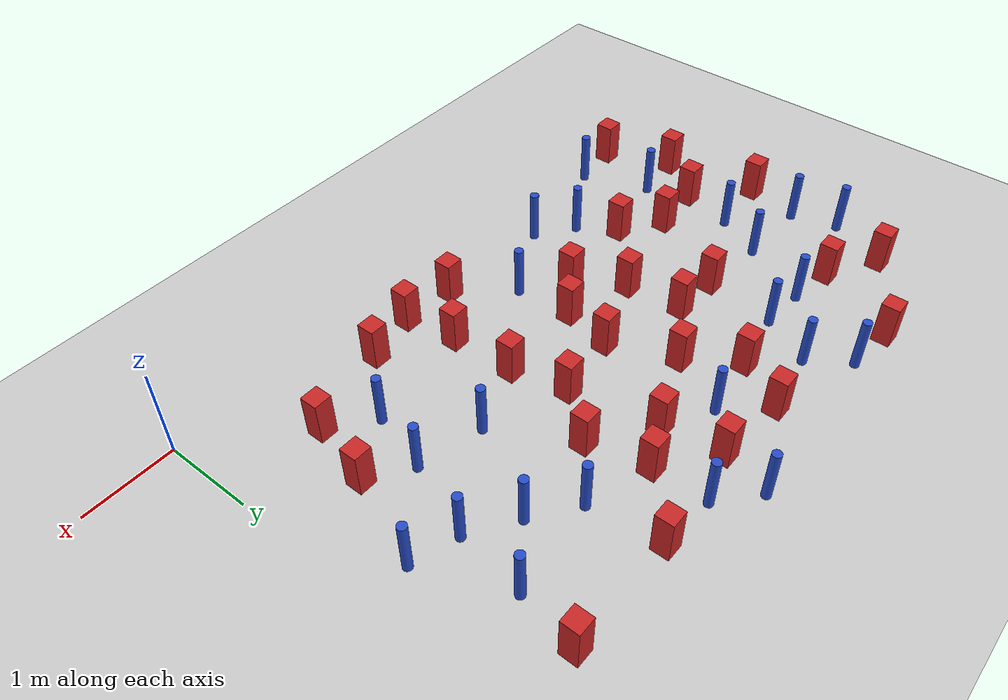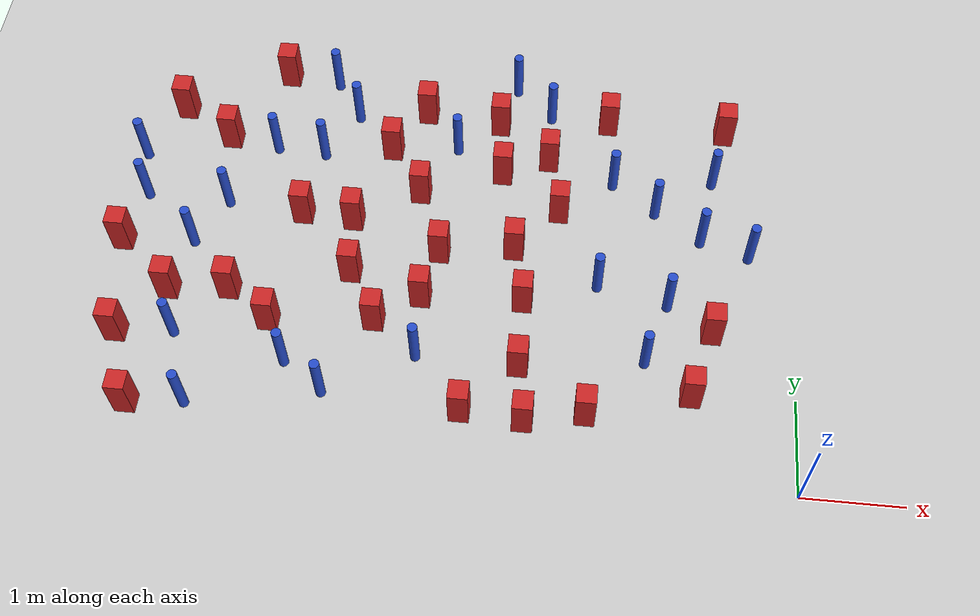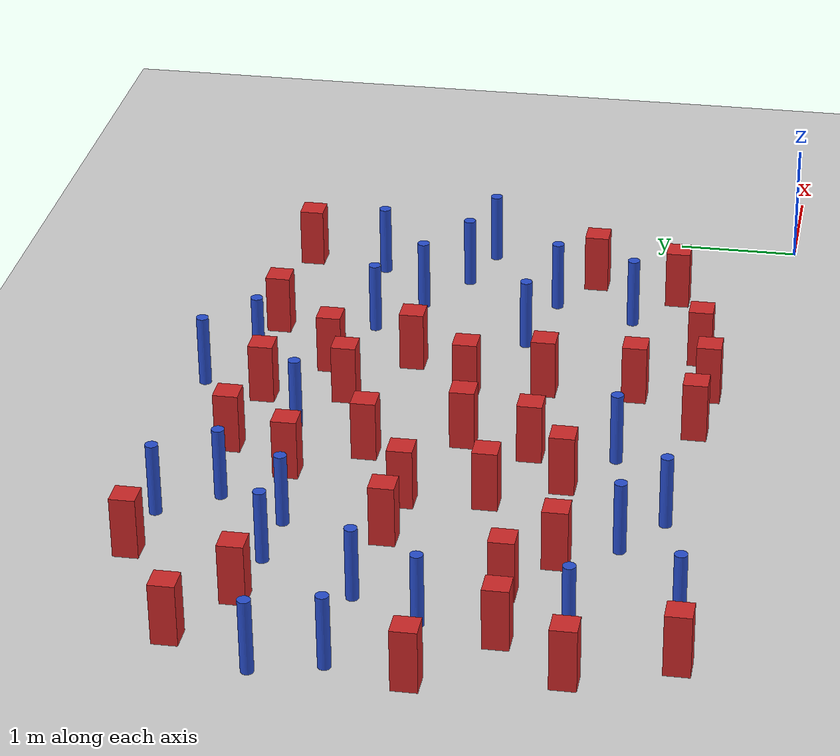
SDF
<sdf version="1.6">
 <world name="default">
  <model name="ground_plane">
   <static>1</static>
   <link name="link">
    <collision name="collision">
     <geometry><plane><normal>0 0 1</normal><size>100 100</size></plane></geometry>
     <surface><friction><ode><mu>100</mu><mu2>50</mu2></ode></friction></surface>
    </collision>
    <visual name="visual">
     <cast_shadows>0</cast_shadows>
     <geometry><plane><normal>0 0 1</normal><size>100 100</size></plane></geometry>
     <material>
      <ambient>1.0 1.0 1.0 1.0</ambient>
      <diffuse>0.8 0.8 0.8 1.0</diffuse>
      <specular>0.01 0.01 0.01 1.000000</specular>
     </material>
    </visual>
   </link>
  </model>
  <model name="pole_obstacle4">
   <static>true</static>
   <pose>-5.58241695153 3.55196459856 -9.47619616065e-06 5.49618799738e-07 2.36310414051e-07 -1.55090534805e-07</pose>
   <link name="link">
    <pose>0 0 0.3 0 -0 0</pose>
    <inertial>
     <mass>1</mass>
     <inertia><ixx>0.145833</ixx><ixy>0</ixy><ixz>0</ixz><iyy>0.145833</iyy><iyz>0</iyz><izz>0.125</izz></inertia>
    </inertial>
    <collision name="collision">
     <geometry><cylinder><radius>0.05</radius><length>.6</length></cylinder></geometry>
    </collision>
    <visual name="visual">
     <geometry><cylinder><radius>0.05</radius><length>.6</length></cylinder></geometry>
     <material>
      <script><name>Gazebo/Blue</name><uri>file://media/materials/scripts/gazebo.material</uri></script>
     </material>
    </visual>
   </link>
  </model>
  <model name="square_post_obstacle20">
   <static>true</static>
   <pose>-2.63922978032 0.517504427123 -6.11067671241e-07 -5.50515727128e-06 -8.79689657224e-07 2.37013304536e-05</pose>
   <link name="link">
    <pose>0 0 0.25 0 -0 0</pose>
    <inertial>
     <mass>100</mass>
     <inertia>
      <ixx>0.166667</ixx>
      <ixy>0</ixy>
      <ixz>0</ixz>
      <iyy>0.166667</iyy>
      <iyz>0</iyz>
      <izz>0.166667</izz>
     </inertia>
    </inertial>
    <collision name="collision"><geometry><box><size>.2 .2 .5</size></box></geometry></collision>
    <visual name="visual">
     <geometry><box><size>.2 .2 .5</size></box></geometry>
     <material>
      <script><name>Gazebo/Red</name><uri>file://media/materials/scripts/gazebo.material</uri></script>
     </material>
    </visual>
   </link>
  </model>
  <model name="pole_obstacle13">
   <static>true</static>
   <pose>-5.0503495889 0.949455976347 -9.47619616065e-06 5.49618799737e-07 2.36310414061e-07 -1.550905348e-07</pose>
   <link name="link">
    <pose>0 0 0.3 0 -0 0</pose>
    <inertial>
     <mass>1</mass>
     <inertia><ixx>0.145833</ixx><ixy>0</ixy><ixz>0</ixz><iyy>0.145833</iyy><iyz>0</iyz><izz>0.125</izz></inertia>
    </inertial>
    <collision name="collision">
     <geometry><cylinder><radius>0.05</radius><length>.6</length></cylinder></geometry>
    </collision>
    <visual name="visual">
     <geometry><cylinder><radius>0.05</radius><length>.6</length></cylinder></geometry>
     <material>
      <script><name>Gazebo/Blue</name><uri>file://media/materials/scripts/gazebo.material</uri></script>
     </material>
    </visual>
   </link>
  </model>
  <model name="pole_obstacle14">
   <static>true</static>
   <pose>-3.61705896451 3.72201527648 -9.47619616065e-06 5.49618799737e-07 2.36310414067e-07 -1.55090534797e-07</pose>
   <link name="link">
    <pose>0 0 0.3 0 -0 0</pose>
    <inertial>
     <mass>1</mass>
     <inertia><ixx>0.145833</ixx><ixy>0</ixy><ixz>0</ixz><iyy>0.145833</iyy><iyz>0</iyz><izz>0.125</izz></inertia>
    </inertial>
    <collision name="collision">
     <geometry><cylinder><radius>0.05</radius><length>.6</length></cylinder></geometry>
    </collision>
    <visual name="visual">
     <geometry><cylinder><radius>0.05</radius><length>.6</length></cylinder></geometry>
     <material>
      <script><name>Gazebo/Blue</name><uri>file://media/materials/scripts/gazebo.material</uri></script>
     </material>
    </visual>
   </link>
  </model>
  <model name="pole_obstacle15">
   <static>true</static>
   <pose>-0.46060873047 2.60166311697 -9.47619616065e-06 5.49618799737e-07 2.36310414073e-07 -1.55090534793e-07</pose>
   <link name="link">
    <pose>0 0 0.3 0 -0 0</pose>
    <inertial>
     <mass>1</mass>
     <inertia><ixx>0.145833</ixx><ixy>0</ixy><ixz>0</ixz><iyy>0.145833</iyy><iyz>0</iyz><izz>0.125</izz></inertia>
    </inertial>
    <collision name="collision">
     <geometry><cylinder><radius>0.05</radius><length>.6</length></cylinder></geometry>
    </collision>
    <visual name="visual">
     <geometry><cylinder><radius>0.05</radius><length>.6</length></cylinder></geometry>
     <material>
      <script><name>Gazebo/Blue</name><uri>file://media/materials/scripts/gazebo.material</uri></script>
     </material>
    </visual>
   </link>
  </model>
  <model name="square_post_obstacle28">
   <static>true</static>
   <pose>-6.67487177697 3.99249502904 -6.11067671241e-07 -5.50515727128e-06 -8.79689657224e-07 2.37013304536e-05</pose>
   <link name="link">
    <pose>0 0 0.25 0 -0 0</pose>
    <inertial>
     <mass>100</mass>
     <inertia>
      <ixx>0.166667</ixx>
      <ixy>0</ixy>
      <ixz>0</ixz>
      <iyy>0.166667</iyy>
      <iyz>0</iyz>
      <izz>0.166667</izz>
     </inertia>
    </inertial>
    <collision name="collision"><geometry><box><size>.2 .2 .5</size></box></geometry></collision>
    <visual name="visual">
     <geometry><box><size>.2 .2 .5</size></box></geometry>
     <material>
      <script><name>Gazebo/Red</name><uri>file://media/materials/scripts/gazebo.material</uri></script>
     </material>
    </visual>
   </link>
  </model>
  <model name="pole_obstacle19">
   <static>true</static>
   <pose>-6.23956410614 2.2624648213 -9.47619616065e-06 5.49618799738e-07 2.36310414051e-07 -1.55090534805e-07</pose>
   <link name="link">
    <pose>0 0 0.3 0 -0 0</pose>
    <inertial>
     <mass>1</mass>
     <inertia><ixx>0.145833</ixx><ixy>0</ixy><ixz>0</ixz><iyy>0.145833</iyy><iyz>0</iyz><izz>0.125</izz></inertia>
    </inertial>
    <collision name="collision">
     <geometry><cylinder><radius>0.05</radius><length>.6</length></cylinder></geometry>
    </collision>
    <visual name="visual">
     <geometry><cylinder><radius>0.05</radius><length>.6</length></cylinder></geometry>
     <material>
      <script><name>Gazebo/Blue</name><uri>file://media/materials/scripts/gazebo.material</uri></script>
     </material>
    </visual>
   </link>
  </model>
  <model name="pole_obstacle29">
   <static>true</static>
   <pose>-4.63031147207 0.650843368248 -9.47619616065e-06 5.49618799737e-07 2.36310414061e-07 -1.550905348e-07</pose>
   <link name="link">
    <pose>0 0 0.3 0 -0 0</pose>
    <inertial>
     <mass>1</mass>
     <inertia><ixx>0.145833</ixx><ixy>0</ixy><ixz>0</ixz><iyy>0.145833</iyy><iyz>0</iyz><izz>0.125</izz></inertia>
    </inertial>
    <collision name="collision">
     <geometry><cylinder><radius>0.05</radius><length>.6</length></cylinder></geometry>
    </collision>
    <visual name="visual">
     <geometry><cylinder><radius>0.05</radius><length>.6</length></cylinder></geometry>
     <material>
      <script><name>Gazebo/Blue</name><uri>file://media/materials/scripts/gazebo.material</uri></script>
     </material>
    </visual>
   </link>
  </model>
  <model name="pole_obstacle31">
   <static>true</static>
   <pose>-0.851729617828 3.52033554842 -9.47619616065e-06 5.49618799737e-07 2.36310414066e-07 -1.55090534797e-07</pose>
   <link name="link">
    <pose>0 0 0.3 0 -0 0</pose>
    <inertial>
     <mass>1</mass>
     <inertia><ixx>0.145833</ixx><ixy>0</ixy><ixz>0</ixz><iyy>0.145833</iyy><iyz>0</iyz><izz>0.125</izz></inertia>
    </inertial>
    <collision name="collision">
     <geometry><cylinder><radius>0.05</radius><length>.6</length></cylinder></geometry>
    </collision>
    <visual name="visual">
     <geometry><cylinder><radius>0.05</radius><length>.6</length></cylinder></geometry>
     <material>
      <script><name>Gazebo/Blue</name><uri>file://media/materials/scripts/gazebo.material</uri></script>
     </material>
    </visual>
   </link>
  </model>
  <model name="square_post_obstacle36">
   <static>true</static>
   <pose>-4.60905344603 2.67794285354 -6.11067671241e-07 -5.50515727128e-06 -8.79689657224e-07 2.37013304536e-05</pose>
   <link name="link">
    <pose>0 0 0.25 0 -0 0</pose>
    <inertial>
     <mass>100</mass>
     <inertia>
      <ixx>0.166667</ixx>
      <ixy>0</ixy>
      <ixz>0</ixz>
      <iyy>0.166667</iyy>
      <iyz>0</iyz>
      <izz>0.166667</izz>
     </inertia>
    </inertial>
    <collision name="collision"><geometry><box><size>.2 .2 .5</size></box></geometry></collision>
    <visual name="visual">
     <geometry><box><size>.2 .2 .5</size></box></geometry>
     <material>
      <script><name>Gazebo/Red</name><uri>file://media/materials/scripts/gazebo.material</uri></script>
     </material>
    </visual>
   </link>
  </model>
  <model name="pole_obstacle43">
   <static>true</static>
   <pose>-5.05575543502 3.51488278252 -9.47619616065e-06 5.49618799738e-07 2.36310414051e-07 -1.55090534805e-07</pose>
   <link name="link">
    <pose>0 0 0.3 0 -0 0</pose>
    <inertial>
     <mass>1</mass>
     <inertia><ixx>0.145833</ixx><ixy>0</ixy><ixz>0</ixz><iyy>0.145833</iyy><iyz>0</iyz><izz>0.125</izz></inertia>
    </inertial>
    <collision name="collision">
     <geometry><cylinder><radius>0.05</radius><length>.6</length></cylinder></geometry>
    </collision>
    <visual name="visual">
     <geometry><cylinder><radius>0.05</radius><length>.6</length></cylinder></geometry>
     <material>
      <script><name>Gazebo/Blue</name><uri>file://media/materials/scripts/gazebo.material</uri></script>
     </material>
    </visual>
   </link>
  </model>
  <model name="pole_obstacle54">
   <static>true</static>
   <pose>-5.05562311019 4.50400256321 -9.47619616065e-06 5.49618799737e-07 2.36310414037e-07 -1.55090534814e-07</pose>
   <link name="link">
    <pose>0 0 0.3 0 -0 0</pose>
    <inertial>
     <mass>1</mass>
     <inertia><ixx>0.145833</ixx><ixy>0</ixy><ixz>0</ixz><iyy>0.145833</iyy><iyz>0</iyz><izz>0.125</izz></inertia>
    </inertial>
    <collision name="collision">
     <geometry><cylinder><radius>0.05</radius><length>.6</length></cylinder></geometry>
    </collision>
    <visual name="visual">
     <geometry><cylinder><radius>0.05</radius><length>.6</length></cylinder></geometry>
     <material>
      <script><name>Gazebo/Blue</name><uri>file://media/materials/scripts/gazebo.material</uri></script>
     </material>
    </visual>
   </link>
  </model>
  <model name="square_post_obstacle63">
   <static>true</static>
   <pose>-2.04628876621 0.640850240564 -6.11067671241e-07 -5.50515727128e-06 -8.79689657224e-07 2.37013304536e-05</pose>
   <link name="link">
    <pose>0 0 0.25 0 -0 0</pose>
    <inertial>
     <mass>100</mass>
     <inertia>
      <ixx>0.166667</ixx>
      <ixy>0</ixy>
      <ixz>0</ixz>
      <iyy>0.166667</iyy>
      <iyz>0</iyz>
      <izz>0.166667</izz>
     </inertia>
    </inertial>
    <collision name="collision"><geometry><box><size>.2 .2 .5</size></box></geometry></collision>
    <visual name="visual">
     <geometry><box><size>.2 .2 .5</size></box></geometry>
     <material>
      <script><name>Gazebo/Red</name><uri>file://media/materials/scripts/gazebo.material</uri></script>
     </material>
    </visual>
   </link>
  </model>
  <model name="square_post_obstacle79">
   <static>true</static>
   <pose>-3.65956411371 2.35929945289 -6.11067671241e-07 -5.50515727128e-06 -8.79689657224e-07 2.37013304536e-05</pose>
   <link name="link">
    <pose>0 0 0.25 0 -0 0</pose>
    <inertial>
     <mass>100</mass>
     <inertia>
      <ixx>0.166667</ixx>
      <ixy>0</ixy>
      <ixz>0</ixz>
      <iyy>0.166667</iyy>
      <iyz>0</iyz>
      <izz>0.166667</izz>
     </inertia>
    </inertial>
    <collision name="collision"><geometry><box><size>.2 .2 .5</size></box></geometry></collision>
    <visual name="visual">
     <geometry><box><size>.2 .2 .5</size></box></geometry>
     <material>
      <script><name>Gazebo/Red</name><uri>file://media/materials/scripts/gazebo.material</uri></script>
     </material>
    </visual>
   </link>
  </model>
  <model name="pole_obstacle87">
   <static>true</static>
   <pose>-3.76066337058 1.13323781056 -9.47619616065e-06 5.49618799737e-07 2.36310414072e-07 -1.55090534793e-07</pose>
   <link name="link">
    <pose>0 0 0.3 0 -0 0</pose>
    <inertial>
     <mass>1</mass>
     <inertia><ixx>0.145833</ixx><ixy>0</ixy><ixz>0</ixz><iyy>0.145833</iyy><iyz>0</iyz><izz>0.125</izz></inertia>
    </inertial>
    <collision name="collision">
     <geometry><cylinder><radius>0.05</radius><length>.6</length></cylinder></geometry>
    </collision>
    <visual name="visual">
     <geometry><cylinder><radius>0.05</radius><length>.6</length></cylinder></geometry>
     <material>
      <script><name>Gazebo/Blue</name><uri>file://media/materials/scripts/gazebo.material</uri></script>
     </material>
    </visual>
   </link>
  </model>
  <model name="square_post_obstacle83">
   <static>true</static>
   <pose>-0.838138042296 1.65451812365 -6.11067671241e-07 -5.50515727128e-06 -8.79689657224e-07 2.37013304536e-05</pose>
   <link name="link">
    <pose>0 0 0.25 0 -0 0</pose>
    <inertial>
     <mass>100</mass>
     <inertia>
      <ixx>0.166667</ixx>
      <ixy>0</ixy>
      <ixz>0</ixz>
      <iyy>0.166667</iyy>
      <iyz>0</iyz>
      <izz>0.166667</izz>
     </inertia>
    </inertial>
    <collision name="collision"><geometry><box><size>.2 .2 .5</size></box></geometry></collision>
    <visual name="visual">
     <geometry><box><size>.2 .2 .5</size></box></geometry>
     <material>
      <script><name>Gazebo/Red</name><uri>file://media/materials/scripts/gazebo.material</uri></script>
     </material>
    </visual>
   </link>
  </model>
  <model name="square_post_obstacle90">
   <static>true</static>
   <pose>-2.00052884143 4.20248173698 -6.11067671241e-07 -5.50515727128e-06 -8.79689657224e-07 2.37013304536e-05</pose>
   <link name="link">
    <pose>0 0 0.25 0 -0 0</pose>
    <inertial>
     <mass>100</mass>
     <inertia>
      <ixx>0.166667</ixx>
      <ixy>0</ixy>
      <ixz>0</ixz>
      <iyy>0.166667</iyy>
      <iyz>0</iyz>
      <izz>0.166667</izz>
     </inertia>
    </inertial>
    <collision name="collision"><geometry><box><size>.2 .2 .5</size></box></geometry></collision>
    <visual name="visual">
     <geometry><box><size>.2 .2 .5</size></box></geometry>
     <material>
      <script><name>Gazebo/Red</name><uri>file://media/materials/scripts/gazebo.material</uri></script>
     </material>
    </visual>
   </link>
  </model>
  <model name="square_post_obstacle91">
   <static>true</static>
   <pose>-3.78776529692 1.80545348706 -6.11067671241e-07 -5.50515727128e-06 -8.79689657224e-07 2.37013304536e-05</pose>
   <link name="link">
    <pose>0 0 0.25 0 -0 0</pose>
    <inertial>
     <mass>100</mass>
     <inertia>
      <ixx>0.166667</ixx>
      <ixy>0</ixy>
      <ixz>0</ixz>
      <iyy>0.166667</iyy>
      <iyz>0</iyz>
      <izz>0.166667</izz>
     </inertia>
    </inertial>
    <collision name="collision"><geometry><box><size>.2 .2 .5</size></box></geometry></collision>
    <visual name="visual">
     <geometry><box><size>.2 .2 .5</size></box></geometry>
     <material>
      <script><name>Gazebo/Red</name><uri>file://media/materials/scripts/gazebo.material</uri></script>
     </material>
    </visual>
   </link>
  </model>
  <model name="square_post_obstacle99">
   <static>true</static>
   <pose>-0.732426698712 4.18140664243 -6.11067671241e-07 -5.50515727128e-06 -8.79689657224e-07 2.37013304536e-05</pose>
   <link name="link">
    <pose>0 0 0.25 0 -0 0</pose>
    <inertial>
     <mass>100</mass>
     <inertia>
      <ixx>0.166667</ixx>
      <ixy>0</ixy>
      <ixz>0</ixz>
      <iyy>0.166667</iyy>
      <iyz>0</iyz>
      <izz>0.166667</izz>
     </inertia>
    </inertial>
    <collision name="collision"><geometry><box><size>.2 .2 .5</size></box></geometry></collision>
    <visual name="visual">
     <geometry><box><size>.2 .2 .5</size></box></geometry>
     <material>
      <script><name>Gazebo/Red</name><uri>file://media/materials/scripts/gazebo.material</uri></script>
     </material>
    </visual>
   </link>
  </model>
  <model name="square_post_obstacle102">
   <static>true</static>
   <pose>-2.75312069764 1.84598409485 -6.11067671241e-07 -5.50515727128e-06 -8.79689657224e-07 2.37013304536e-05</pose>
   <link name="link">
    <pose>0 0 0.25 0 -0 0</pose>
    <inertial>
     <mass>100</mass>
     <inertia>
      <ixx>0.166667</ixx>
      <ixy>0</ixy>
      <ixz>0</ixz>
      <iyy>0.166667</iyy>
      <iyz>0</iyz>
      <izz>0.166667</izz>
     </inertia>
    </inertial>
    <collision name="collision"><geometry><box><size>.2 .2 .5</size></box></geometry></collision>
    <visual name="visual">
     <geometry><box><size>.2 .2 .5</size></box></geometry>
     <material>
      <script><name>Gazebo/Red</name><uri>file://media/materials/scripts/gazebo.material</uri></script>
     </material>
    </visual>
   </link>
  </model>
  <model name="pole_obstacle118">
   <static>true</static>
   <pose>-1.4493725728 3.07403097376 -9.47619616065e-06 5.49618799737e-07 2.36310414062e-07 -1.55090534798e-07</pose>
   <link name="link">
    <pose>0 0 0.3 0 -0 0</pose>
    <inertial>
     <mass>1</mass>
     <inertia><ixx>0.145833</ixx><ixy>0</ixy><ixz>0</ixz><iyy>0.145833</iyy><iyz>0</iyz><izz>0.125</izz></inertia>
    </inertial>
    <collision name="collision">
     <geometry><cylinder><radius>0.05</radius><length>.6</length></cylinder></geometry>
    </collision>
    <visual name="visual">
     <geometry><cylinder><radius>0.05</radius><length>.6</length></cylinder></geometry>
     <material>
      <script><name>Gazebo/Blue</name><uri>file://media/materials/scripts/gazebo.material</uri></script>
     </material>
    </visual>
   </link>
  </model>
  <model name="square_post_obstacle113">
   <static>true</static>
   <pose>-4.31771605797 3.6378734051 -6.11067671241e-07 -5.50515727128e-06 -8.79689657224e-07 2.37013304536e-05</pose>
   <link name="link">
    <pose>0 0 0.25 0 -0 0</pose>
    <inertial>
     <mass>100</mass>
     <inertia>
      <ixx>0.166667</ixx>
      <ixy>0</ixy>
      <ixz>0</ixz>
      <iyy>0.166667</iyy>
      <iyz>0</iyz>
      <izz>0.166667</izz>
     </inertia>
    </inertial>
    <collision name="collision"><geometry><box><size>.2 .2 .5</size></box></geometry></collision>
    <visual name="visual">
     <geometry><box><size>.2 .2 .5</size></box></geometry>
     <material>
      <script><name>Gazebo/Red</name><uri>file://media/materials/scripts/gazebo.material</uri></script>
     </material>
    </visual>
   </link>
  </model>
  <model name="pole_obstacle128">
   <static>true</static>
   <pose>-0.963189079383 2.75563259284 -9.47619616065e-06 5.49618799737e-07 2.36310414063e-07 -1.55090534799e-07</pose>
   <link name="link">
    <pose>0 0 0.3 0 -0 0</pose>
    <inertial>
     <mass>1</mass>
     <inertia><ixx>0.145833</ixx><ixy>0</ixy><ixz>0</ixz><iyy>0.145833</iyy><iyz>0</iyz><izz>0.125</izz></inertia>
    </inertial>
    <collision name="collision">
     <geometry><cylinder><radius>0.05</radius><length>.6</length></cylinder></geometry>
    </collision>
    <visual name="visual">
     <geometry><cylinder><radius>0.05</radius><length>.6</length></cylinder></geometry>
     <material>
      <script><name>Gazebo/Blue</name><uri>file://media/materials/scripts/gazebo.material</uri></script>
     </material>
    </visual>
   </link>
  </model>
  <model name="pole_obstacle134">
   <static>true</static>
   <pose>-5.97048060878 2.79262416123 -9.47619616065e-06 5.49618799738e-07 2.36310414051e-07 -1.55090534805e-07</pose>
   <link name="link">
    <pose>0 0 0.3 0 -0 0</pose>
    <inertial>
     <mass>1</mass>
     <inertia><ixx>0.145833</ixx><ixy>0</ixy><ixz>0</ixz><iyy>0.145833</iyy><iyz>0</iyz><izz>0.125</izz></inertia>
    </inertial>
    <collision name="collision">
     <geometry><cylinder><radius>0.05</radius><length>.6</length></cylinder></geometry>
    </collision>
    <visual name="visual">
     <geometry><cylinder><radius>0.05</radius><length>.6</length></cylinder></geometry>
     <material>
      <script><name>Gazebo/Blue</name><uri>file://media/materials/scripts/gazebo.material</uri></script>
     </material>
    </visual>
   </link>
  </model>
  <model name="pole_obstacle136">
   <static>true</static>
   <pose>-2.00702989716 2.10927461368 -9.4761961606e-06 5.49618799729e-07 2.36310414004e-07 -1.55090534822e-07</pose>
   <link name="link">
    <pose>0 0 0.3 0 -0 0</pose>
    <inertial>
     <mass>1</mass>
     <inertia><ixx>0.145833</ixx><ixy>0</ixy><ixz>0</ixz><iyy>0.145833</iyy><iyz>0</iyz><izz>0.125</izz></inertia>
    </inertial>
    <collision name="collision">
     <geometry><cylinder><radius>0.05</radius><length>.6</length></cylinder></geometry>
    </collision>
    <visual name="visual">
     <geometry><cylinder><radius>0.05</radius><length>.6</length></cylinder></geometry>
     <material>
      <script><name>Gazebo/Blue</name><uri>file://media/materials/scripts/gazebo.material</uri></script>
     </material>
    </visual>
   </link>
  </model>
  <model name="square_post_obstacle120">
   <static>true</static>
   <pose>-5.28572052 1.39315367566 -6.11067671241e-07 -5.50515727128e-06 -8.79689657224e-07 2.37013304536e-05</pose>
   <link name="link">
    <pose>0 0 0.25 0 -0 0</pose>
    <inertial>
     <mass>100</mass>
     <inertia>
      <ixx>0.166667</ixx>
      <ixy>0</ixy>
      <ixz>0</ixz>
      <iyy>0.166667</iyy>
      <iyz>0</iyz>
      <izz>0.166667</izz>
     </inertia>
    </inertial>
    <collision name="collision"><geometry><box><size>.2 .2 .5</size></box></geometry></collision>
    <visual name="visual">
     <geometry><box><size>.2 .2 .5</size></box></geometry>
     <material>
      <script><name>Gazebo/Red</name><uri>file://media/materials/scripts/gazebo.material</uri></script>
     </material>
    </visual>
   </link>
  </model>
  <model name="square_post_obstacle122">
   <static>true</static>
   <pose>-2.73418353605 1.10741859931 -6.11067671241e-07 -5.50515727128e-06 -8.79689657224e-07 2.37013304536e-05</pose>
   <link name="link">
    <pose>0 0 0.25 0 -0 0</pose>
    <inertial>
     <mass>100</mass>
     <inertia>
      <ixx>0.166667</ixx>
      <ixy>0</ixy>
      <ixz>0</ixz>
      <iyy>0.166667</iyy>
      <iyz>0</iyz>
      <izz>0.166667</izz>
     </inertia>
    </inertial>
    <collision name="collision"><geometry><box><size>.2 .2 .5</size></box></geometry></collision>
    <visual name="visual">
     <geometry><box><size>.2 .2 .5</size></box></geometry>
     <material>
      <script><name>Gazebo/Red</name><uri>file://media/materials/scripts/gazebo.material</uri></script>
     </material>
    </visual>
   </link>
  </model>
  <model name="square_post_obstacle133">
   <static>true</static>
   <pose>-4.54025176529 2.03608956588 -6.11067671241e-07 -5.50515727128e-06 -8.79689657224e-07 2.37013304536e-05</pose>
   <link name="link">
    <pose>0 0 0.25 0 -0 0</pose>
    <inertial>
     <mass>100</mass>
     <inertia>
      <ixx>0.166667</ixx>
      <ixy>0</ixy>
      <ixz>0</ixz>
      <iyy>0.166667</iyy>
      <iyz>0</iyz>
      <izz>0.166667</izz>
     </inertia>
    </inertial>
    <collision name="collision"><geometry><box><size>.2 .2 .5</size></box></geometry></collision>
    <visual name="visual">
     <geometry><box><size>.2 .2 .5</size></box></geometry>
     <material>
      <script><name>Gazebo/Red</name><uri>file://media/materials/scripts/gazebo.material</uri></script>
     </material>
    </visual>
   </link>
  </model>
  <model name="square_post_obstacle137">
   <static>true</static>
   <pose>-4.22507460025 1.48963678446 -6.11067671241e-07 -5.50515727128e-06 -8.79689657224e-07 2.37013304536e-05</pose>
   <link name="link">
    <pose>0 0 0.25 0 -0 0</pose>
    <inertial>
     <mass>100</mass>
     <inertia>
      <ixx>0.166667</ixx>
      <ixy>0</ixy>
      <ixz>0</ixz>
      <iyy>0.166667</iyy>
      <iyz>0</iyz>
      <izz>0.166667</izz>
     </inertia>
    </inertial>
    <collision name="collision"><geometry><box><size>.2 .2 .5</size></box></geometry></collision>
    <visual name="visual">
     <geometry><box><size>.2 .2 .5</size></box></geometry>
     <material>
      <script><name>Gazebo/Red</name><uri>file://media/materials/scripts/gazebo.material</uri></script>
     </material>
    </visual>
   </link>
  </model>
  <model name="square_post_obstacle138">
   <static>true</static>
   <pose>-1.03186340727 0.932825442909 -6.11067671241e-07 -5.50515727128e-06 -8.79689657224e-07 2.37013304536e-05</pose>
   <link name="link">
    <pose>0 0 0.25 0 -0 0</pose>
    <inertial>
     <mass>100</mass>
     <inertia>
      <ixx>0.166667</ixx>
      <ixy>0</ixy>
      <ixz>0</ixz>
      <iyy>0.166667</iyy>
      <iyz>0</iyz>
      <izz>0.166667</izz>
     </inertia>
    </inertial>
    <collision name="collision"><geometry><box><size>.2 .2 .5</size></box></geometry></collision>
    <visual name="visual">
     <geometry><box><size>.2 .2 .5</size></box></geometry>
     <material>
      <script><name>Gazebo/Red</name><uri>file://media/materials/scripts/gazebo.material</uri></script>
     </material>
    </visual>
   </link>
  </model>
  <model name="pole_obstacle154">
   <static>true</static>
   <pose>-1.91189918656 3.40687051626 -9.47619616065e-06 5.49618799737e-07 2.36310414062e-07 -1.55090534798e-07</pose>
   <link name="link">
    <pose>0 0 0.3 0 -0 0</pose>
    <inertial>
     <mass>1</mass>
     <inertia><ixx>0.145833</ixx><ixy>0</ixy><ixz>0</ixz><iyy>0.145833</iyy><iyz>0</iyz><izz>0.125</izz></inertia>
    </inertial>
    <collision name="collision">
     <geometry><cylinder><radius>0.05</radius><length>.6</length></cylinder></geometry>
    </collision>
    <visual name="visual">
     <geometry><cylinder><radius>0.05</radius><length>.6</length></cylinder></geometry>
     <material>
      <script><name>Gazebo/Blue</name><uri>file://media/materials/scripts/gazebo.material</uri></script>
     </material>
    </visual>
   </link>
  </model>
  <model name="square_post_obstacle145">
   <static>true</static>
   <pose>-2.89320478376 2.46664976022 -6.11067671241e-07 -5.50515727128e-06 -8.79689657224e-07 2.37013304536e-05</pose>
   <link name="link">
    <pose>0 0 0.25 0 -0 0</pose>
    <inertial>
     <mass>100</mass>
     <inertia>
      <ixx>0.166667</ixx>
      <ixy>0</ixy>
      <ixz>0</ixz>
      <iyy>0.166667</iyy>
      <iyz>0</iyz>
      <izz>0.166667</izz>
     </inertia>
    </inertial>
    <collision name="collision"><geometry><box><size>.2 .2 .5</size></box></geometry></collision>
    <visual name="visual">
     <geometry><box><size>.2 .2 .5</size></box></geometry>
     <material>
      <script><name>Gazebo/Red</name><uri>file://media/materials/scripts/gazebo.material</uri></script>
     </material>
    </visual>
   </link>
  </model>
  <model name="square_post_obstacle151">
   <static>true</static>
   <pose>-3.09803566177 3.42034556247 -6.11067671241e-07 -5.50515727128e-06 -8.79689657224e-07 2.37013304536e-05</pose>
   <link name="link">
    <pose>0 0 0.25 0 -0 0</pose>
    <inertial>
     <mass>100</mass>
     <inertia>
      <ixx>0.166667</ixx>
      <ixy>0</ixy>
      <ixz>0</ixz>
      <iyy>0.166667</iyy>
      <iyz>0</iyz>
      <izz>0.166667</izz>
     </inertia>
    </inertial>
    <collision name="collision"><geometry><box><size>.2 .2 .5</size></box></geometry></collision>
    <visual name="visual">
     <geometry><box><size>.2 .2 .5</size></box></geometry>
     <material>
      <script><name>Gazebo/Red</name><uri>file://media/materials/scripts/gazebo.material</uri></script>
     </material>
    </visual>
   </link>
  </model>
  <model name="square_post_obstacle152">
   <static>true</static>
   <pose>-3.18088144402 4.08263442305 -6.11067671241e-07 -5.50515727128e-06 -8.79689657224e-07 2.37013304536e-05</pose>
   <link name="link">
    <pose>0 0 0.25 0 -0 0</pose>
    <inertial>
     <mass>100</mass>
     <inertia>
      <ixx>0.166667</ixx>
      <ixy>0</ixy>
      <ixz>0</ixz>
      <iyy>0.166667</iyy>
      <iyz>0</iyz>
      <izz>0.166667</izz>
     </inertia>
    </inertial>
    <collision name="collision"><geometry><box><size>.2 .2 .5</size></box></geometry></collision>
    <visual name="visual">
     <geometry><box><size>.2 .2 .5</size></box></geometry>
     <material>
      <script><name>Gazebo/Red</name><uri>file://media/materials/scripts/gazebo.material</uri></script>
     </material>
    </visual>
   </link>
  </model>
  <model name="square_post_obstacle153">
   <static>true</static>
   <pose>-3.25541123978 0.565681022104 -6.11067671241e-07 -5.50515727128e-06 -8.79689657224e-07 2.37013304536e-05</pose>
   <link name="link">
    <pose>0 0 0.25 0 -0 0</pose>
    <inertial>
     <mass>100</mass>
     <inertia>
      <ixx>0.166667</ixx>
      <ixy>0</ixy>
      <ixz>0</ixz>
      <iyy>0.166667</iyy>
      <iyz>0</iyz>
      <izz>0.166667</izz>
     </inertia>
    </inertial>
    <collision name="collision"><geometry><box><size>.2 .2 .5</size></box></geometry></collision>
    <visual name="visual">
     <geometry><box><size>.2 .2 .5</size></box></geometry>
     <material>
      <script><name>Gazebo/Red</name><uri>file://media/materials/scripts/gazebo.material</uri></script>
     </material>
    </visual>
   </link>
  </model>
  <model name="pole_obstacle160">
   <static>true</static>
   <pose>-2.63101420897 4.25179149585 -9.47619616065e-06 5.49618799738e-07 2.3631041406e-07 -1.55090534801e-07</pose>
   <link name="link">
    <pose>0 0 0.3 0 -0 0</pose>
    <inertial>
     <mass>1</mass>
     <inertia><ixx>0.145833</ixx><ixy>0</ixy><ixz>0</ixz><iyy>0.145833</iyy><iyz>0</iyz><izz>0.125</izz></inertia>
    </inertial>
    <collision name="collision">
     <geometry><cylinder><radius>0.05</radius><length>.6</length></cylinder></geometry>
    </collision>
    <visual name="visual">
     <geometry><cylinder><radius>0.05</radius><length>.6</length></cylinder></geometry>
     <material>
      <script><name>Gazebo/Blue</name><uri>file://media/materials/scripts/gazebo.material</uri></script>
     </material>
    </visual>
   </link>
  </model>
  <model name="pole_obstacle163">
   <static>true</static>
   <pose>-3.03585656995 4.61024980672 -9.47619616065e-06 5.49618799738e-07 2.3631041406e-07 -1.55090534801e-07</pose>
   <link name="link">
    <pose>0 0 0.3 0 -0 0</pose>
    <inertial>
     <mass>1</mass>
     <inertia><ixx>0.145833</ixx><ixy>0</ixy><ixz>0</ixz><iyy>0.145833</iyy><iyz>0</iyz><izz>0.125</izz></inertia>
    </inertial>
    <collision name="collision">
     <geometry><cylinder><radius>0.05</radius><length>.6</length></cylinder></geometry>
    </collision>
    <visual name="visual">
     <geometry><cylinder><radius>0.05</radius><length>.6</length></cylinder></geometry>
     <material>
      <script><name>Gazebo/Blue</name><uri>file://media/materials/scripts/gazebo.material</uri></script>
     </material>
    </visual>
   </link>
  </model>
  <model name="square_post_obstacle160">
   <static>true</static>
   <pose>-5.15196183564 2.71366260603 -6.11067671241e-07 -5.50515727128e-06 -8.79689657224e-07 2.37013304536e-05</pose>
   <link name="link">
    <pose>0 0 0.25 0 -0 0</pose>
    <inertial>
     <mass>100</mass>
     <inertia>
      <ixx>0.166667</ixx>
      <ixy>0</ixy>
      <ixz>0</ixz>
      <iyy>0.166667</iyy>
      <iyz>0</iyz>
      <izz>0.166667</izz>
     </inertia>
    </inertial>
    <collision name="collision"><geometry><box><size>.2 .2 .5</size></box></geometry></collision>
    <visual name="visual">
     <geometry><box><size>.2 .2 .5</size></box></geometry>
     <material>
      <script><name>Gazebo/Red</name><uri>file://media/materials/scripts/gazebo.material</uri></script>
     </material>
    </visual>
   </link>
  </model>
  <model name="pole_obstacle168">
   <static>true</static>
   <pose>-6.21363790567 1.17487224995 -9.47619616065e-06 5.49618799738e-07 2.36310414071e-07 -1.55090534796e-07</pose>
   <link name="link">
    <pose>0 0 0.3 0 -0 0</pose>
    <inertial>
     <mass>1</mass>
     <inertia><ixx>0.145833</ixx><ixy>0</ixy><ixz>0</ixz><iyy>0.145833</iyy><iyz>0</iyz><izz>0.125</izz></inertia>
    </inertial>
    <collision name="collision">
     <geometry><cylinder><radius>0.05</radius><length>.6</length></cylinder></geometry>
    </collision>
    <visual name="visual">
     <geometry><cylinder><radius>0.05</radius><length>.6</length></cylinder></geometry>
     <material>
      <script><name>Gazebo/Blue</name><uri>file://media/materials/scripts/gazebo.material</uri></script>
     </material>
    </visual>
   </link>
  </model>
  <model name="square_post_obstacle161">
   <static>true</static>
   <pose>-6.36827371517 1.6627580931 -6.11067671241e-07 -5.50515727128e-06 -8.79689657224e-07 2.37013304536e-05</pose>
   <link name="link">
    <pose>0 0 0.25 0 -0 0</pose>
    <inertial>
     <mass>100</mass>
     <inertia>
      <ixx>0.166667</ixx>
      <ixy>0</ixy>
      <ixz>0</ixz>
      <iyy>0.166667</iyy>
      <iyz>0</iyz>
      <izz>0.166667</izz>
     </inertia>
    </inertial>
    <collision name="collision"><geometry><box><size>.2 .2 .5</size></box></geometry></collision>
    <visual name="visual">
     <geometry><box><size>.2 .2 .5</size></box></geometry>
     <material>
      <script><name>Gazebo/Red</name><uri>file://media/materials/scripts/gazebo.material</uri></script>
     </material>
    </visual>
   </link>
  </model>
  <model name="pole_obstacle171">
   <static>true</static>
   <pose>-6.85348783931 2.81505288631 -9.47619616065e-06 5.49618799738e-07 2.36310414051e-07 -1.55090534805e-07</pose>
   <link name="link">
    <pose>0 0 0.3 0 -0 0</pose>
    <inertial>
     <mass>1</mass>
     <inertia><ixx>0.145833</ixx><ixy>0</ixy><ixz>0</ixz><iyy>0.145833</iyy><iyz>0</iyz><izz>0.125</izz></inertia>
    </inertial>
    <collision name="collision">
     <geometry><cylinder><radius>0.05</radius><length>.6</length></cylinder></geometry>
    </collision>
    <visual name="visual">
     <geometry><cylinder><radius>0.05</radius><length>.6</length></cylinder></geometry>
     <material>
      <script><name>Gazebo/Blue</name><uri>file://media/materials/scripts/gazebo.material</uri></script>
     </material>
    </visual>
   </link>
  </model>
  <model name="pole_obstacle172">
   <static>true</static>
   <pose>-5.94040816465 0.41252100501 -9.47619616065e-06 5.49618799737e-07 2.36310414057e-07 -1.55090534802e-07</pose>
   <link name="link">
    <pose>0 0 0.3 0 -0 0</pose>
    <inertial>
     <mass>1</mass>
     <inertia><ixx>0.145833</ixx><ixy>0</ixy><ixz>0</ixz><iyy>0.145833</iyy><iyz>0</iyz><izz>0.125</izz></inertia>
    </inertial>
    <collision name="collision">
     <geometry><cylinder><radius>0.05</radius><length>.6</length></cylinder></geometry>
    </collision>
    <visual name="visual">
     <geometry><cylinder><radius>0.05</radius><length>.6</length></cylinder></geometry>
     <material>
      <script><name>Gazebo/Blue</name><uri>file://media/materials/scripts/gazebo.material</uri></script>
     </material>
    </visual>
   </link>
  </model>
  <model name="pole_obstacle176">
   <static>true</static>
   <pose>-4.75526203336 4.06520005875 -9.47619616065e-06 5.49618799737e-07 2.36310414037e-07 -1.55090534814e-07</pose>
   <link name="link">
    <pose>0 0 0.3 0 -0 0</pose>
    <inertial>
     <mass>1</mass>
     <inertia><ixx>0.145833</ixx><ixy>0</ixy><ixz>0</ixz><iyy>0.145833</iyy><iyz>0</iyz><izz>0.125</izz></inertia>
    </inertial>
    <collision name="collision">
     <geometry><cylinder><radius>0.05</radius><length>.6</length></cylinder></geometry>
    </collision>
    <visual name="visual">
     <geometry><cylinder><radius>0.05</radius><length>.6</length></cylinder></geometry>
     <material>
      <script><name>Gazebo/Blue</name><uri>file://media/materials/scripts/gazebo.material</uri></script>
     </material>
    </visual>
   </link>
  </model>
  <model name="square_post_obstacle168">
   <static>true</static>
   <pose>-6.78620601474 1.124303879 -6.11067671241e-07 -5.50515727128e-06 -8.79689657224e-07 2.37013304536e-05</pose>
   <link name="link">
    <pose>0 0 0.25 0 -0 0</pose>
    <inertial>
     <mass>100</mass>
     <inertia>
      <ixx>0.166667</ixx>
      <ixy>0</ixy>
      <ixz>0</ixz>
      <iyy>0.166667</iyy>
      <iyz>0</iyz>
      <izz>0.166667</izz>
     </inertia>
    </inertial>
    <collision name="collision"><geometry><box><size>.2 .2 .5</size></box></geometry></collision>
    <visual name="visual">
     <geometry><box><size>.2 .2 .5</size></box></geometry>
     <material>
      <script><name>Gazebo/Red</name><uri>file://media/materials/scripts/gazebo.material</uri></script>
     </material>
    </visual>
   </link>
  </model>
  <model name="square_post_obstacle169">
   <static>true</static>
   <pose>-2.46131572165 2.97943118543 -6.11067671241e-07 -5.50515727128e-06 -8.79689657224e-07 2.37013304536e-05</pose>
   <link name="link">
    <pose>0 0 0.25 0 -0 0</pose>
    <inertial>
     <mass>100</mass>
     <inertia>
      <ixx>0.166667</ixx>
      <ixy>0</ixy>
      <ixz>0</ixz>
      <iyy>0.166667</iyy>
      <iyz>0</iyz>
      <izz>0.166667</izz>
     </inertia>
    </inertial>
    <collision name="collision"><geometry><box><size>.2 .2 .5</size></box></geometry></collision>
    <visual name="visual">
     <geometry><box><size>.2 .2 .5</size></box></geometry>
     <material>
      <script><name>Gazebo/Red</name><uri>file://media/materials/scripts/gazebo.material</uri></script>
     </material>
    </visual>
   </link>
  </model>
  <model name="square_post_obstacle170">
   <static>true</static>
   <pose>-5.7489472974 1.71960400722 -6.11067671241e-07 -5.50515727128e-06 -8.79689657224e-07 2.37013304536e-05</pose>
   <link name="link">
    <pose>0 0 0.25 0 -0 0</pose>
    <inertial>
     <mass>100</mass>
     <inertia>
      <ixx>0.166667</ixx>
      <ixy>0</ixy>
      <ixz>0</ixz>
      <iyy>0.166667</iyy>
      <iyz>0</iyz>
      <izz>0.166667</izz>
     </inertia>
    </inertial>
    <collision name="collision"><geometry><box><size>.2 .2 .5</size></box></geometry></collision>
    <visual name="visual">
     <geometry><box><size>.2 .2 .5</size></box></geometry>
     <material>
      <script><name>Gazebo/Red</name><uri>file://media/materials/scripts/gazebo.material</uri></script>
     </material>
    </visual>
   </link>
  </model>
  <model name="pole_obstacle184">
   <static>true</static>
   <pose>-6.99170339751 3.33843690116 -9.47619616065e-06 5.49618799738e-07 2.36310414051e-07 -1.55090534805e-07</pose>
   <link name="link">
    <pose>0 0 0.3 0 -0 0</pose>
    <inertial>
     <mass>1</mass>
     <inertia><ixx>0.145833</ixx><ixy>0</ixy><ixz>0</ixz><iyy>0.145833</iyy><iyz>0</iyz><izz>0.125</izz></inertia>
    </inertial>
    <collision name="collision">
     <geometry><cylinder><radius>0.05</radius><length>.6</length></cylinder></geometry>
    </collision>
    <visual name="visual">
     <geometry><cylinder><radius>0.05</radius><length>.6</length></cylinder></geometry>
     <material>
      <script><name>Gazebo/Blue</name><uri>file://media/materials/scripts/gazebo.material</uri></script>
     </material>
    </visual>
   </link>
  </model>
  <model name="pole_obstacle188">
   <static>true</static>
   <pose>-1.48969527319 1.27085265156 -9.47619616065e-06 5.49618799737e-07 2.36310414065e-07 -1.55090534798e-07</pose>
   <link name="link">
    <pose>0 0 0.3 0 -0 0</pose>
    <inertial>
     <mass>1</mass>
     <inertia><ixx>0.145833</ixx><ixy>0</ixy><ixz>0</ixz><iyy>0.145833</iyy><iyz>0</iyz><izz>0.125</izz></inertia>
    </inertial>
    <collision name="collision">
     <geometry><cylinder><radius>0.05</radius><length>.6</length></cylinder></geometry>
    </collision>
    <visual name="visual">
     <geometry><cylinder><radius>0.05</radius><length>.6</length></cylinder></geometry>
     <material>
      <script><name>Gazebo/Blue</name><uri>file://media/materials/scripts/gazebo.material</uri></script>
     </material>
    </visual>
   </link>
  </model>
  <model name="square_post_obstacle193">
   <static>true</static>
   <pose>-3.94633345841 3.09039486824 -6.11067671241e-07 -5.50515727128e-06 -8.79689657224e-07 2.37013304536e-05</pose>
   <link name="link">
    <pose>0 0 0.25 0 -0 0</pose>
    <inertial>
     <mass>100</mass>
     <inertia>
      <ixx>0.166667</ixx>
      <ixy>0</ixy>
      <ixz>0</ixz>
      <iyy>0.166667</iyy>
      <iyz>0</iyz>
      <izz>0.166667</izz>
     </inertia>
    </inertial>
    <collision name="collision"><geometry><box><size>.2 .2 .5</size></box></geometry></collision>
    <visual name="visual">
     <geometry><box><size>.2 .2 .5</size></box></geometry>
     <material>
      <script><name>Gazebo/Red</name><uri>file://media/materials/scripts/gazebo.material</uri></script>
     </material>
    </visual>
   </link>
  </model>
  <model name="square_post_obstacle194">
   <static>true</static>
   <pose>-6.97042047099 2.20800512836 -6.11067671241e-07 -5.50515727128e-06 -8.79689657224e-07 2.37013304536e-05</pose>
   <link name="link">
    <pose>0 0 0.25 0 -0 0</pose>
    <inertial>
     <mass>100</mass>
     <inertia>
      <ixx>0.166667</ixx>
      <ixy>0</ixy>
      <ixz>0</ixz>
      <iyy>0.166667</iyy>
      <iyz>0</iyz>
      <izz>0.166667</izz>
     </inertia>
    </inertial>
    <collision name="collision"><geometry><box><size>.2 .2 .5</size></box></geometry></collision>
    <visual name="visual">
     <geometry><box><size>.2 .2 .5</size></box></geometry>
     <material>
      <script><name>Gazebo/Red</name><uri>file://media/materials/scripts/gazebo.material</uri></script>
     </material>
    </visual>
   </link>
  </model>
  <model name="pole_obstacle207">
   <static>true</static>
   <pose>-1.28435553351 1.94232419921 -9.47619616065e-06 5.49618799737e-07 2.36310414065e-07 -1.55090534798e-07</pose>
   <link name="link">
    <pose>0 0 0.3 0 -0 0</pose>
    <inertial>
     <mass>1</mass>
     <inertia><ixx>0.145833</ixx><ixy>0</ixy><ixz>0</ixz><iyy>0.145833</iyy><iyz>0</iyz><izz>0.125</izz></inertia>
    </inertial>
    <collision name="collision">
     <geometry><cylinder><radius>0.05</radius><length>.6</length></cylinder></geometry>
    </collision>
    <visual name="visual">
     <geometry><cylinder><radius>0.05</radius><length>.6</length></cylinder></geometry>
     <material>
      <script><name>Gazebo/Blue</name><uri>file://media/materials/scripts/gazebo.material</uri></script>
     </material>
    </visual>
   </link>
  </model>
  <model name="square_post_obstacle201">
   <static>true</static>
   <pose>-3.99481053957 4.17433466674 -6.11067671241e-07 -5.50515727128e-06 -8.79689657224e-07 2.37013304536e-05</pose>
   <link name="link">
    <pose>0 0 0.25 0 -0 0</pose>
    <inertial>
     <mass>100</mass>
     <inertia>
      <ixx>0.166667</ixx>
      <ixy>0</ixy>
      <ixz>0</ixz>
      <iyy>0.166667</iyy>
      <iyz>0</iyz>
      <izz>0.166667</izz>
     </inertia>
    </inertial>
    <collision name="collision"><geometry><box><size>.2 .2 .5</size></box></geometry></collision>
    <visual name="visual">
     <geometry><box><size>.2 .2 .5</size></box></geometry>
     <material>
      <script><name>Gazebo/Red</name><uri>file://media/materials/scripts/gazebo.material</uri></script>
     </material>
    </visual>
   </link>
  </model>
  <model name="square_post_obstacle214">
   <static>true</static>
   <pose>-2.61553413844 3.64161637234 -6.11067671241e-07 -5.50515727128e-06 -8.79689657224e-07 2.37013304536e-05</pose>
   <link name="link">
    <pose>0 0 0.25 0 -0 0</pose>
    <inertial>
     <mass>100</mass>
     <inertia>
      <ixx>0.166667</ixx>
      <ixy>0</ixy>
      <ixz>0</ixz>
      <iyy>0.166667</iyy>
      <iyz>0</iyz>
      <izz>0.166667</izz>
     </inertia>
    </inertial>
    <collision name="collision"><geometry><box><size>.2 .2 .5</size></box></geometry></collision>
    <visual name="visual">
     <geometry><box><size>.2 .2 .5</size></box></geometry>
     <material>
      <script><name>Gazebo/Red</name><uri>file://media/materials/scripts/gazebo.material</uri></script>
     </material>
    </visual>
   </link>
  </model>
  <model name="square_post_obstacle217">
   <static>true</static>
   <pose>-5.6098900498 4.56485997688 -6.11067671241e-07 -5.50515727128e-06 -8.79689657224e-07 2.37013304536e-05</pose>
   <link name="link">
    <pose>0 0 0.25 0 -0 0</pose>
    <inertial>
     <mass>100</mass>
     <inertia>
      <ixx>0.166667</ixx>
      <ixy>0</ixy>
      <ixz>0</ixz>
      <iyy>0.166667</iyy>
      <iyz>0</iyz>
      <izz>0.166667</izz>
     </inertia>
    </inertial>
    <collision name="collision"><geometry><box><size>.2 .2 .5</size></box></geometry></collision>
    <visual name="visual">
     <geometry><box><size>.2 .2 .5</size></box></geometry>
     <material>
      <script><name>Gazebo/Red</name><uri>file://media/materials/scripts/gazebo.material</uri></script>
     </material>
    </visual>
   </link>
  </model>
  <model name="square_post_obstacle218">
   <static>true</static>
   <pose>-6.4928600498 0.360496976878 -6.11067671241e-07 -5.50515727128e-06 -8.79689657224e-07 2.37013304536e-05</pose>
   <link name="link">
    <pose>0 0 0.25 0 -0 0</pose>
    <inertial>
     <mass>100</mass>
     <inertia>
      <ixx>0.166667</ixx>
      <ixy>0</ixy>
      <ixz>0</ixz>
      <iyy>0.166667</iyy>
      <iyz>0</iyz>
      <izz>0.166667</izz>
     </inertia>
    </inertial>
    <collision name="collision"><geometry><box><size>.2 .2 .5</size></box></geometry></collision>
    <visual name="visual">
     <geometry><box><size>.2 .2 .5</size></box></geometry>
     <material>
      <script><name>Gazebo/Red</name><uri>file://media/materials/scripts/gazebo.material</uri></script>
     </material>
    </visual>
   </link>
  </model>
  <model name="square_post_obstacle223">
   <static>true</static>
   <pose>-6.1012700498 3.63398997688 -6.11067671241e-07 -5.50515727128e-06 -8.79689657224e-07 2.37013304536e-05</pose>
   <link name="link">
    <pose>0 0 0.25 0 -0 0</pose>
    <inertial>
     <mass>100</mass>
     <inertia>
      <ixx>0.166667</ixx>
      <ixy>0</ixy>
      <ixz>0</ixz>
      <iyy>0.166667</iyy>
      <iyz>0</iyz>
      <izz>0.166667</izz>
     </inertia>
    </inertial>
    <collision name="collision"><geometry><box><size>.2 .2 .5</size></box></geometry></collision>
    <visual name="visual">
     <geometry><box><size>.2 .2 .5</size></box></geometry>
     <material>
      <script><name>Gazebo/Red</name><uri>file://media/materials/scripts/gazebo.material</uri></script>
     </material>
    </visual>
   </link>
  </model>
 </world>
</sdf>
